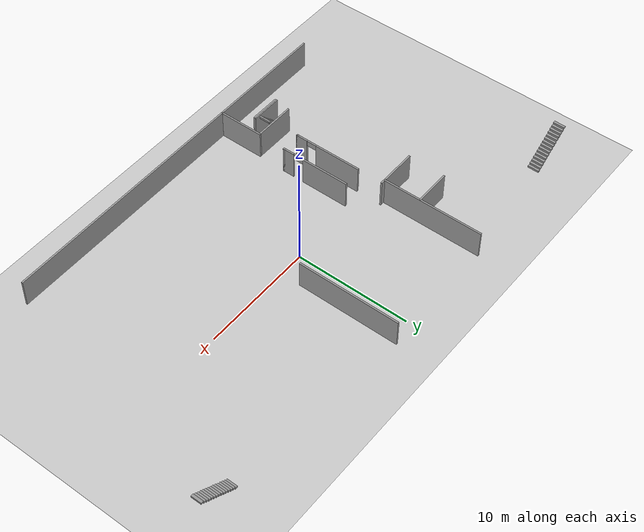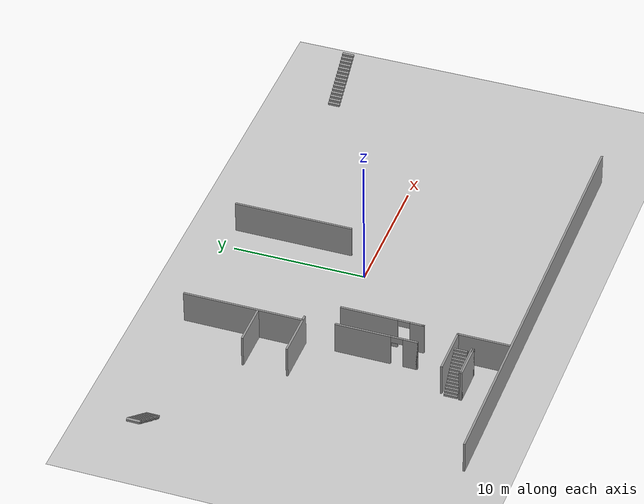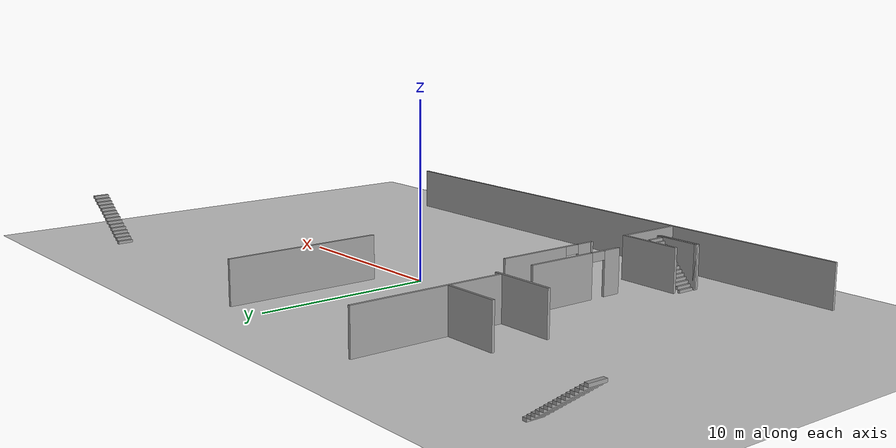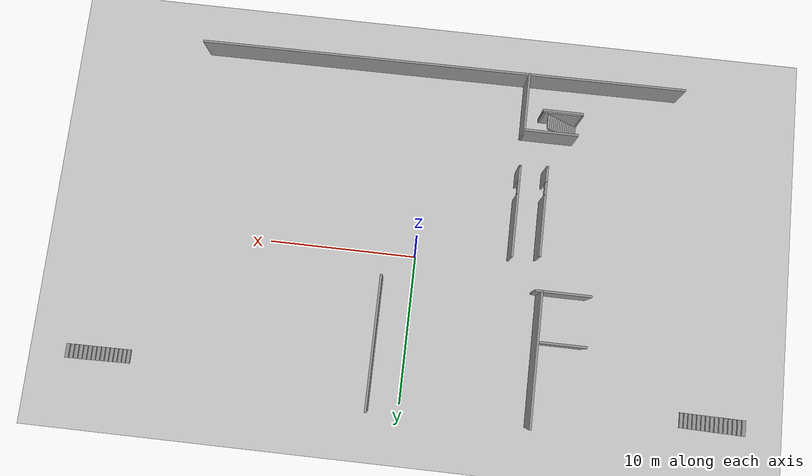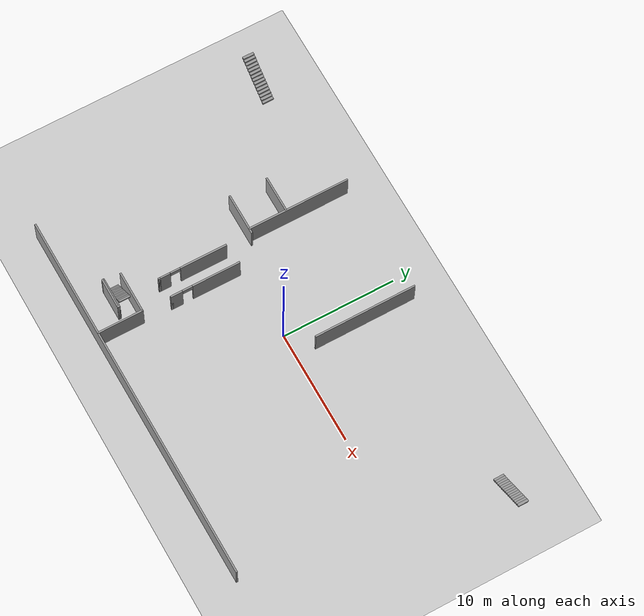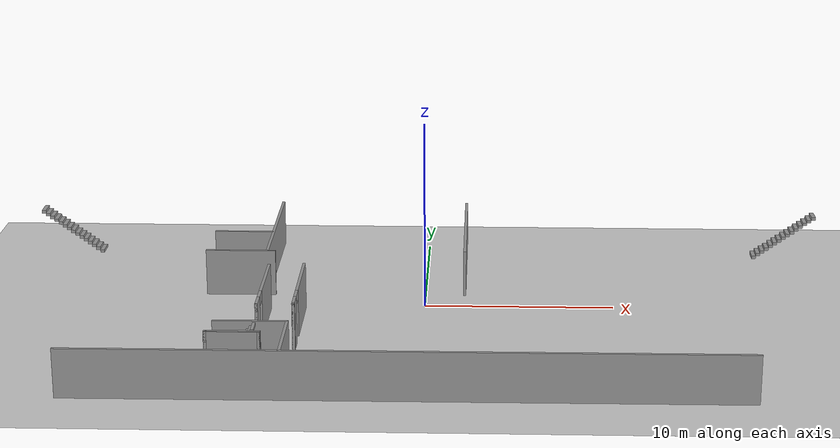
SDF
<sdf version="1.6">
 <world name="default">
  <model name="ground_plane">
   <static>1</static>
   <link name="link">
    <collision name="collision">
     <geometry><plane><normal>0 0 1</normal><size>100 100</size></plane></geometry>
     <surface><friction><ode><mu>100</mu><mu2>50</mu2></ode></friction></surface>
    </collision>
    <visual name="visual">
     <cast_shadows>0</cast_shadows>
     <geometry><plane><normal>0 0 1</normal><size>100 100</size></plane></geometry>
     <material>
      <script><uri>file://media/materials/scripts/gazebo.material</uri><name>Gazebo/Grey</name></script>
     </material>
    </visual>
   </link>
  </model>
  <model name="Devon1_test">
   <pose>0.002437 -1.27806 0 0 -0 0</pose>
   <link name="Stairs_5">
    <visual name="Stairs_5_Visual_0">
     <pose>-10.1985 -8.6433 0.083333 0 -0 1.5708</pose>
     <geometry><box><size>1 0.155676 0.166667</size></box></geometry>
     <material>
      <script><uri>file://media/materials/scripts/gazebo.material</uri><name>Gazebo/Grey</name></script>
      <ambient>1 1 1 1</ambient>
     </material>
    </visual>
    <collision name="Stairs_5_Collision_0">
     <geometry><box><size>1 0.155676 0.166667</size></box></geometry>
     <pose>-10.1985 -8.6433 0.083333 0 -0 1.5708</pose>
    </collision>
    <visual name="Stairs_5_Visual_1">
     <pose>-10.0429 -8.6433 0.25 0 -0 1.5708</pose>
     <geometry><box><size>1 0.155676 0.166667</size></box></geometry>
     <material>
      <script><uri>file://media/materials/scripts/gazebo.material</uri><name>Gazebo/Grey</name></script>
      <ambient>1 1 1 1</ambient>
     </material>
    </visual>
    <collision name="Stairs_5_Collision_1">
     <geometry><box><size>1 0.155676 0.166667</size></box></geometry>
     <pose>-10.0429 -8.6433 0.25 0 -0 1.5708</pose>
    </collision>
    <visual name="Stairs_5_Visual_2">
     <pose>-9.88718 -8.6433 0.416667 0 -0 1.5708</pose>
     <geometry><box><size>1 0.155676 0.166667</size></box></geometry>
     <material>
      <script><uri>file://media/materials/scripts/gazebo.material</uri><name>Gazebo/Grey</name></script>
      <ambient>1 1 1 1</ambient>
     </material>
    </visual>
    <collision name="Stairs_5_Collision_2">
     <geometry><box><size>1 0.155676 0.166667</size></box></geometry>
     <pose>-9.88718 -8.6433 0.416667 0 -0 1.5708</pose>
    </collision>
    <visual name="Stairs_5_Visual_3">
     <pose>-9.7315 -8.6433 0.583333 0 -0 1.5708</pose>
     <geometry><box><size>1 0.155676 0.166667</size></box></geometry>
     <material>
      <script><uri>file://media/materials/scripts/gazebo.material</uri><name>Gazebo/Grey</name></script>
      <ambient>1 1 1 1</ambient>
     </material>
    </visual>
    <collision name="Stairs_5_Collision_3">
     <geometry><box><size>1 0.155676 0.166667</size></box></geometry>
     <pose>-9.7315 -8.6433 0.583333 0 -0 1.5708</pose>
    </collision>
    <visual name="Stairs_5_Visual_4">
     <pose>-9.57583 -8.6433 0.75 0 -0 1.5708</pose>
     <geometry><box><size>1 0.155676 0.166667</size></box></geometry>
     <material>
      <script><uri>file://media/materials/scripts/gazebo.material</uri><name>Gazebo/Grey</name></script>
      <ambient>1 1 1 1</ambient>
     </material>
    </visual>
    <collision name="Stairs_5_Collision_4">
     <geometry><box><size>1 0.155676 0.166667</size></box></geometry>
     <pose>-9.57583 -8.6433 0.75 0 -0 1.5708</pose>
    </collision>
    <visual name="Stairs_5_Visual_5">
     <pose>-9.42015 -8.6433 0.916667 0 -0 1.5708</pose>
     <geometry><box><size>1 0.155676 0.166667</size></box></geometry>
     <material>
      <script><uri>file://media/materials/scripts/gazebo.material</uri><name>Gazebo/Grey</name></script>
      <ambient>1 1 1 1</ambient>
     </material>
    </visual>
    <collision name="Stairs_5_Collision_5">
     <geometry><box><size>1 0.155676 0.166667</size></box></geometry>
     <pose>-9.42015 -8.6433 0.916667 0 -0 1.5708</pose>
    </collision>
    <visual name="Stairs_5_Visual_6">
     <pose>-9.26447 -8.6433 1.08333 0 -0 1.5708</pose>
     <geometry><box><size>1 0.155676 0.166667</size></box></geometry>
     <material>
      <script><uri>file://media/materials/scripts/gazebo.material</uri><name>Gazebo/Grey</name></script>
      <ambient>1 1 1 1</ambient>
     </material>
    </visual>
    <collision name="Stairs_5_Collision_6">
     <geometry><box><size>1 0.155676 0.166667</size></box></geometry>
     <pose>-9.26447 -8.6433 1.08333 0 -0 1.5708</pose>
    </collision>
    <visual name="Stairs_5_Visual_7">
     <pose>-9.1088 -8.6433 1.25 0 -0 1.5708</pose>
     <geometry><box><size>1 0.155676 0.166667</size></box></geometry>
     <material>
      <script><uri>file://media/materials/scripts/gazebo.material</uri><name>Gazebo/Grey</name></script>
      <ambient>1 1 1 1</ambient>
     </material>
    </visual>
    <collision name="Stairs_5_Collision_7">
     <geometry><box><size>1 0.155676 0.166667</size></box></geometry>
     <pose>-9.1088 -8.6433 1.25 0 -0 1.5708</pose>
    </collision>
    <visual name="Stairs_5_Visual_8">
     <pose>-8.95312 -8.6433 1.41667 0 -0 1.5708</pose>
     <geometry><box><size>1 0.155676 0.166667</size></box></geometry>
     <material>
      <script><uri>file://media/materials/scripts/gazebo.material</uri><name>Gazebo/Grey</name></script>
      <ambient>1 1 1 1</ambient>
     </material>
    </visual>
    <collision name="Stairs_5_Collision_8">
     <geometry><box><size>1 0.155676 0.166667</size></box></geometry>
     <pose>-8.95312 -8.6433 1.41667 0 -0 1.5708</pose>
    </collision>
    <visual name="Stairs_5_Visual_9">
     <pose>-8.79744 -8.6433 1.58333 0 -0 1.5708</pose>
     <geometry><box><size>1 0.155676 0.166667</size></box></geometry>
     <material>
      <script><uri>file://media/materials/scripts/gazebo.material</uri><name>Gazebo/Grey</name></script>
      <ambient>1 1 1 1</ambient>
     </material>
    </visual>
    <collision name="Stairs_5_Collision_9">
     <geometry><box><size>1 0.155676 0.166667</size></box></geometry>
     <pose>-8.79744 -8.6433 1.58333 0 -0 1.5708</pose>
    </collision>
    <visual name="Stairs_5_Visual_10">
     <pose>-8.64177 -8.6433 1.75 0 -0 1.5708</pose>
     <geometry><box><size>1 0.155676 0.166667</size></box></geometry>
     <material>
      <script><uri>file://media/materials/scripts/gazebo.material</uri><name>Gazebo/Grey</name></script>
      <ambient>1 1 1 1</ambient>
     </material>
    </visual>
    <collision name="Stairs_5_Collision_10">
     <geometry><box><size>1 0.155676 0.166667</size></box></geometry>
     <pose>-8.64177 -8.6433 1.75 0 -0 1.5708</pose>
    </collision>
    <visual name="Stairs_5_Visual_11">
     <pose>-8.48609 -8.6433 1.91667 0 -0 1.5708</pose>
     <geometry><box><size>1 0.155676 0.166667</size></box></geometry>
     <material>
      <script><uri>file://media/materials/scripts/gazebo.material</uri><name>Gazebo/Grey</name></script>
      <ambient>1 1 1 1</ambient>
     </material>
    </visual>
    <collision name="Stairs_5_Collision_11">
     <geometry><box><size>1 0.155676 0.166667</size></box></geometry>
     <pose>-8.48609 -8.6433 1.91667 0 -0 1.5708</pose>
    </collision>
    <visual name="Stairs_5_Visual_12">
     <pose>-8.33042 -8.6433 2.08333 0 -0 1.5708</pose>
     <geometry><box><size>1 0.155676 0.166667</size></box></geometry>
     <material>
      <script><uri>file://media/materials/scripts/gazebo.material</uri><name>Gazebo/Grey</name></script>
      <ambient>1 1 1 1</ambient>
     </material>
    </visual>
    <collision name="Stairs_5_Collision_12">
     <geometry><box><size>1 0.155676 0.166667</size></box></geometry>
     <pose>-8.33042 -8.6433 2.08333 0 -0 1.5708</pose>
    </collision>
    <visual name="Stairs_5_Visual_13">
     <pose>-8.17474 -8.6433 2.25 0 -0 1.5708</pose>
     <geometry><box><size>1 0.155676 0.166667</size></box></geometry>
     <material>
      <script><uri>file://media/materials/scripts/gazebo.material</uri><name>Gazebo/Grey</name></script>
      <ambient>1 1 1 1</ambient>
     </material>
    </visual>
    <collision name="Stairs_5_Collision_13">
     <geometry><box><size>1 0.155676 0.166667</size></box></geometry>
     <pose>-8.17474 -8.6433 2.25 0 -0 1.5708</pose>
    </collision>
    <visual name="Stairs_5_Visual_14">
     <pose>-8.01906 -8.6433 2.41667 0 -0 1.5708</pose>
     <geometry><box><size>1 0.155676 0.166667</size></box></geometry>
     <material>
      <script><uri>file://media/materials/scripts/gazebo.material</uri><name>Gazebo/Grey</name></script>
      <ambient>1 1 1 1</ambient>
     </material>
    </visual>
    <collision name="Stairs_5_Collision_14">
     <geometry><box><size>1 0.155676 0.166667</size></box></geometry>
     <pose>-8.01906 -8.6433 2.41667 0 -0 1.5708</pose>
    </collision>
   </link>
   <link name="Stairs_6">
    <visual name="Stairs_6_Visual_0">
     <pose>-18.9091 10.232 0.083333 0 -0 -1.5708</pose>
     <geometry><box><size>1 0.233333 0.166667</size></box></geometry>
     <material>
      <script><uri>file://media/materials/scripts/gazebo.material</uri><name>Gazebo/Grey</name></script>
      <ambient>1 1 1 1</ambient>
     </material>
    </visual>
    <collision name="Stairs_6_Collision_0">
     <geometry><box><size>1 0.233333 0.166667</size></box></geometry>
     <pose>-18.9091 10.232 0.083333 0 -0 -1.5708</pose>
    </collision>
    <visual name="Stairs_6_Visual_1">
     <pose>-19.1424 10.232 0.25 0 -0 -1.5708</pose>
     <geometry><box><size>1 0.233333 0.166667</size></box></geometry>
     <material>
      <script><uri>file://media/materials/scripts/gazebo.material</uri><name>Gazebo/Grey</name></script>
      <ambient>1 1 1 1</ambient>
     </material>
    </visual>
    <collision name="Stairs_6_Collision_1">
     <geometry><box><size>1 0.233333 0.166667</size></box></geometry>
     <pose>-19.1424 10.232 0.25 0 -0 -1.5708</pose>
    </collision>
    <visual name="Stairs_6_Visual_2">
     <pose>-19.3758 10.232 0.416667 0 -0 -1.5708</pose>
     <geometry><box><size>1 0.233333 0.166667</size></box></geometry>
     <material>
      <script><uri>file://media/materials/scripts/gazebo.material</uri><name>Gazebo/Grey</name></script>
      <ambient>1 1 1 1</ambient>
     </material>
    </visual>
    <collision name="Stairs_6_Collision_2">
     <geometry><box><size>1 0.233333 0.166667</size></box></geometry>
     <pose>-19.3758 10.232 0.416667 0 -0 -1.5708</pose>
    </collision>
    <visual name="Stairs_6_Visual_3">
     <pose>-19.6091 10.232 0.583333 0 -0 -1.5708</pose>
     <geometry><box><size>1 0.233333 0.166667</size></box></geometry>
     <material>
      <script><uri>file://media/materials/scripts/gazebo.material</uri><name>Gazebo/Grey</name></script>
      <ambient>1 1 1 1</ambient>
     </material>
    </visual>
    <collision name="Stairs_6_Collision_3">
     <geometry><box><size>1 0.233333 0.166667</size></box></geometry>
     <pose>-19.6091 10.232 0.583333 0 -0 -1.5708</pose>
    </collision>
    <visual name="Stairs_6_Visual_4">
     <pose>-19.8424 10.232 0.75 0 -0 -1.5708</pose>
     <geometry><box><size>1 0.233333 0.166667</size></box></geometry>
     <material>
      <script><uri>file://media/materials/scripts/gazebo.material</uri><name>Gazebo/Grey</name></script>
      <ambient>1 1 1 1</ambient>
     </material>
    </visual>
    <collision name="Stairs_6_Collision_4">
     <geometry><box><size>1 0.233333 0.166667</size></box></geometry>
     <pose>-19.8424 10.232 0.75 0 -0 -1.5708</pose>
    </collision>
    <visual name="Stairs_6_Visual_5">
     <pose>-20.0757 10.232 0.916667 0 -0 -1.5708</pose>
     <geometry><box><size>1 0.233333 0.166667</size></box></geometry>
     <material>
      <script><uri>file://media/materials/scripts/gazebo.material</uri><name>Gazebo/Grey</name></script>
      <ambient>1 1 1 1</ambient>
     </material>
    </visual>
    <collision name="Stairs_6_Collision_5">
     <geometry><box><size>1 0.233333 0.166667</size></box></geometry>
     <pose>-20.0757 10.232 0.916667 0 -0 -1.5708</pose>
    </collision>
    <visual name="Stairs_6_Visual_6">
     <pose>-20.3091 10.232 1.08333 0 -0 -1.5708</pose>
     <geometry><box><size>1 0.233333 0.166667</size></box></geometry>
     <material>
      <script><uri>file://media/materials/scripts/gazebo.material</uri><name>Gazebo/Grey</name></script>
      <ambient>1 1 1 1</ambient>
     </material>
    </visual>
    <collision name="Stairs_6_Collision_6">
     <geometry><box><size>1 0.233333 0.166667</size></box></geometry>
     <pose>-20.3091 10.232 1.08333 0 -0 -1.5708</pose>
    </collision>
    <visual name="Stairs_6_Visual_7">
     <pose>-20.5424 10.232 1.25 0 -0 -1.5708</pose>
     <geometry><box><size>1 0.233333 0.166667</size></box></geometry>
     <material>
      <script><uri>file://media/materials/scripts/gazebo.material</uri><name>Gazebo/Grey</name></script>
      <ambient>1 1 1 1</ambient>
     </material>
    </visual>
    <collision name="Stairs_6_Collision_7">
     <geometry><box><size>1 0.233333 0.166667</size></box></geometry>
     <pose>-20.5424 10.232 1.25 0 -0 -1.5708</pose>
    </collision>
    <visual name="Stairs_6_Visual_8">
     <pose>-20.7757 10.232 1.41667 0 -0 -1.5708</pose>
     <geometry><box><size>1 0.233333 0.166667</size></box></geometry>
     <material>
      <script><uri>file://media/materials/scripts/gazebo.material</uri><name>Gazebo/Grey</name></script>
      <ambient>1 1 1 1</ambient>
     </material>
    </visual>
    <collision name="Stairs_6_Collision_8">
     <geometry><box><size>1 0.233333 0.166667</size></box></geometry>
     <pose>-20.7757 10.232 1.41667 0 -0 -1.5708</pose>
    </collision>
    <visual name="Stairs_6_Visual_9">
     <pose>-21.0091 10.232 1.58333 0 -0 -1.5708</pose>
     <geometry><box><size>1 0.233333 0.166667</size></box></geometry>
     <material>
      <script><uri>file://media/materials/scripts/gazebo.material</uri><name>Gazebo/Grey</name></script>
      <ambient>1 1 1 1</ambient>
     </material>
    </visual>
    <collision name="Stairs_6_Collision_9">
     <geometry><box><size>1 0.233333 0.166667</size></box></geometry>
     <pose>-21.0091 10.232 1.58333 0 -0 -1.5708</pose>
    </collision>
    <visual name="Stairs_6_Visual_10">
     <pose>-21.2424 10.232 1.75 0 -0 -1.5708</pose>
     <geometry><box><size>1 0.233333 0.166667</size></box></geometry>
     <material>
      <script><uri>file://media/materials/scripts/gazebo.material</uri><name>Gazebo/Grey</name></script>
      <ambient>1 1 1 1</ambient>
     </material>
    </visual>
    <collision name="Stairs_6_Collision_10">
     <geometry><box><size>1 0.233333 0.166667</size></box></geometry>
     <pose>-21.2424 10.232 1.75 0 -0 -1.5708</pose>
    </collision>
    <visual name="Stairs_6_Visual_11">
     <pose>-21.4758 10.232 1.91667 0 -0 -1.5708</pose>
     <geometry><box><size>1 0.233333 0.166667</size></box></geometry>
     <material>
      <script><uri>file://media/materials/scripts/gazebo.material</uri><name>Gazebo/Grey</name></script>
      <ambient>1 1 1 1</ambient>
     </material>
    </visual>
    <collision name="Stairs_6_Collision_11">
     <geometry><box><size>1 0.233333 0.166667</size></box></geometry>
     <pose>-21.4758 10.232 1.91667 0 -0 -1.5708</pose>
    </collision>
    <visual name="Stairs_6_Visual_12">
     <pose>-21.7091 10.232 2.08333 0 -0 -1.5708</pose>
     <geometry><box><size>1 0.233333 0.166667</size></box></geometry>
     <material>
      <script><uri>file://media/materials/scripts/gazebo.material</uri><name>Gazebo/Grey</name></script>
      <ambient>1 1 1 1</ambient>
     </material>
    </visual>
    <collision name="Stairs_6_Collision_12">
     <geometry><box><size>1 0.233333 0.166667</size></box></geometry>
     <pose>-21.7091 10.232 2.08333 0 -0 -1.5708</pose>
    </collision>
    <visual name="Stairs_6_Visual_13">
     <pose>-21.9424 10.232 2.25 0 -0 -1.5708</pose>
     <geometry><box><size>1 0.233333 0.166667</size></box></geometry>
     <material>
      <script><uri>file://media/materials/scripts/gazebo.material</uri><name>Gazebo/Grey</name></script>
      <ambient>1 1 1 1</ambient>
     </material>
    </visual>
    <collision name="Stairs_6_Collision_13">
     <geometry><box><size>1 0.233333 0.166667</size></box></geometry>
     <pose>-21.9424 10.232 2.25 0 -0 -1.5708</pose>
    </collision>
    <visual name="Stairs_6_Visual_14">
     <pose>-22.1757 10.232 2.41667 0 -0 -1.5708</pose>
     <geometry><box><size>1 0.233333 0.166667</size></box></geometry>
     <material>
      <script><uri>file://media/materials/scripts/gazebo.material</uri><name>Gazebo/Grey</name></script>
      <ambient>1 1 1 1</ambient>
     </material>
    </visual>
    <collision name="Stairs_6_Collision_14">
     <geometry><box><size>1 0.233333 0.166667</size></box></geometry>
     <pose>-22.1757 10.232 2.41667 0 -0 -1.5708</pose>
    </collision>
   </link>
   <link name="Stairs_8">
    <visual name="Stairs_8_Visual_0">
     <pose>18.5359 10.1599 0.083333 0 -0 1.5708</pose>
     <geometry><box><size>0.910609 0.233333 0.166667</size></box></geometry>
     <material>
      <script><uri>file://media/materials/scripts/gazebo.material</uri><name>Gazebo/Grey</name></script>
      <ambient>1 1 1 1</ambient>
     </material>
    </visual>
    <collision name="Stairs_8_Collision_0">
     <geometry><box><size>0.910609 0.233333 0.166667</size></box></geometry>
     <pose>18.5359 10.1599 0.083333 0 -0 1.5708</pose>
    </collision>
    <visual name="Stairs_8_Visual_1">
     <pose>18.7693 10.1599 0.25 0 -0 1.5708</pose>
     <geometry><box><size>0.910609 0.233333 0.166667</size></box></geometry>
     <material>
      <script><uri>file://media/materials/scripts/gazebo.material</uri><name>Gazebo/Grey</name></script>
      <ambient>1 1 1 1</ambient>
     </material>
    </visual>
    <collision name="Stairs_8_Collision_1">
     <geometry><box><size>0.910609 0.233333 0.166667</size></box></geometry>
     <pose>18.7693 10.1599 0.25 0 -0 1.5708</pose>
    </collision>
    <visual name="Stairs_8_Visual_2">
     <pose>19.0026 10.1599 0.416667 0 -0 1.5708</pose>
     <geometry><box><size>0.910609 0.233333 0.166667</size></box></geometry>
     <material>
      <script><uri>file://media/materials/scripts/gazebo.material</uri><name>Gazebo/Grey</name></script>
      <ambient>1 1 1 1</ambient>
     </material>
    </visual>
    <collision name="Stairs_8_Collision_2">
     <geometry><box><size>0.910609 0.233333 0.166667</size></box></geometry>
     <pose>19.0026 10.1599 0.416667 0 -0 1.5708</pose>
    </collision>
    <visual name="Stairs_8_Visual_3">
     <pose>19.2359 10.1599 0.583333 0 -0 1.5708</pose>
     <geometry><box><size>0.910609 0.233333 0.166667</size></box></geometry>
     <material>
      <script><uri>file://media/materials/scripts/gazebo.material</uri><name>Gazebo/Grey</name></script>
      <ambient>1 1 1 1</ambient>
     </material>
    </visual>
    <collision name="Stairs_8_Collision_3">
     <geometry><box><size>0.910609 0.233333 0.166667</size></box></geometry>
     <pose>19.2359 10.1599 0.583333 0 -0 1.5708</pose>
    </collision>
    <visual name="Stairs_8_Visual_4">
     <pose>19.4693 10.1599 0.75 0 -0 1.5708</pose>
     <geometry><box><size>0.910609 0.233333 0.166667</size></box></geometry>
     <material>
      <script><uri>file://media/materials/scripts/gazebo.material</uri><name>Gazebo/Grey</name></script>
      <ambient>1 1 1 1</ambient>
     </material>
    </visual>
    <collision name="Stairs_8_Collision_4">
     <geometry><box><size>0.910609 0.233333 0.166667</size></box></geometry>
     <pose>19.4693 10.1599 0.75 0 -0 1.5708</pose>
    </collision>
    <visual name="Stairs_8_Visual_5">
     <pose>19.7026 10.1599 0.916667 0 -0 1.5708</pose>
     <geometry><box><size>0.910609 0.233333 0.166667</size></box></geometry>
     <material>
      <script><uri>file://media/materials/scripts/gazebo.material</uri><name>Gazebo/Grey</name></script>
      <ambient>1 1 1 1</ambient>
     </material>
    </visual>
    <collision name="Stairs_8_Collision_5">
     <geometry><box><size>0.910609 0.233333 0.166667</size></box></geometry>
     <pose>19.7026 10.1599 0.916667 0 -0 1.5708</pose>
    </collision>
    <visual name="Stairs_8_Visual_6">
     <pose>19.9359 10.1599 1.08333 0 -0 1.5708</pose>
     <geometry><box><size>0.910609 0.233333 0.166667</size></box></geometry>
     <material>
      <script><uri>file://media/materials/scripts/gazebo.material</uri><name>Gazebo/Grey</name></script>
      <ambient>1 1 1 1</ambient>
     </material>
    </visual>
    <collision name="Stairs_8_Collision_6">
     <geometry><box><size>0.910609 0.233333 0.166667</size></box></geometry>
     <pose>19.9359 10.1599 1.08333 0 -0 1.5708</pose>
    </collision>
    <visual name="Stairs_8_Visual_7">
     <pose>20.1693 10.1599 1.25 0 -0 1.5708</pose>
     <geometry><box><size>0.910609 0.233333 0.166667</size></box></geometry>
     <material>
      <script><uri>file://media/materials/scripts/gazebo.material</uri><name>Gazebo/Grey</name></script>
      <ambient>1 1 1 1</ambient>
     </material>
    </visual>
    <collision name="Stairs_8_Collision_7">
     <geometry><box><size>0.910609 0.233333 0.166667</size></box></geometry>
     <pose>20.1693 10.1599 1.25 0 -0 1.5708</pose>
    </collision>
    <visual name="Stairs_8_Visual_8">
     <pose>20.4026 10.1599 1.41667 0 -0 1.5708</pose>
     <geometry><box><size>0.910609 0.233333 0.166667</size></box></geometry>
     <material>
      <script><uri>file://media/materials/scripts/gazebo.material</uri><name>Gazebo/Grey</name></script>
      <ambient>1 1 1 1</ambient>
     </material>
    </visual>
    <collision name="Stairs_8_Collision_8">
     <geometry><box><size>0.910609 0.233333 0.166667</size></box></geometry>
     <pose>20.4026 10.1599 1.41667 0 -0 1.5708</pose>
    </collision>
    <visual name="Stairs_8_Visual_9">
     <pose>20.6359 10.1599 1.58333 0 -0 1.5708</pose>
     <geometry><box><size>0.910609 0.233333 0.166667</size></box></geometry>
     <material>
      <script><uri>file://media/materials/scripts/gazebo.material</uri><name>Gazebo/Grey</name></script>
      <ambient>1 1 1 1</ambient>
     </material>
    </visual>
    <collision name="Stairs_8_Collision_9">
     <geometry><box><size>0.910609 0.233333 0.166667</size></box></geometry>
     <pose>20.6359 10.1599 1.58333 0 -0 1.5708</pose>
    </collision>
    <visual name="Stairs_8_Visual_10">
     <pose>20.8693 10.1599 1.75 0 -0 1.5708</pose>
     <geometry><box><size>0.910609 0.233333 0.166667</size></box></geometry>
     <material>
      <script><uri>file://media/materials/scripts/gazebo.material</uri><name>Gazebo/Grey</name></script>
      <ambient>1 1 1 1</ambient>
     </material>
    </visual>
    <collision name="Stairs_8_Collision_10">
     <geometry><box><size>0.910609 0.233333 0.166667</size></box></geometry>
     <pose>20.8693 10.1599 1.75 0 -0 1.5708</pose>
    </collision>
    <visual name="Stairs_8_Visual_11">
     <pose>21.1026 10.1599 1.91667 0 -0 1.5708</pose>
     <geometry><box><size>0.910609 0.233333 0.166667</size></box></geometry>
     <material>
      <script><uri>file://media/materials/scripts/gazebo.material</uri><name>Gazebo/Grey</name></script>
      <ambient>1 1 1 1</ambient>
     </material>
    </visual>
    <collision name="Stairs_8_Collision_11">
     <geometry><box><size>0.910609 0.233333 0.166667</size></box></geometry>
     <pose>21.1026 10.1599 1.91667 0 -0 1.5708</pose>
    </collision>
    <visual name="Stairs_8_Visual_12">
     <pose>21.3359 10.1599 2.08333 0 -0 1.5708</pose>
     <geometry><box><size>0.910609 0.233333 0.166667</size></box></geometry>
     <material>
      <script><uri>file://media/materials/scripts/gazebo.material</uri><name>Gazebo/Grey</name></script>
      <ambient>1 1 1 1</ambient>
     </material>
    </visual>
    <collision name="Stairs_8_Collision_12">
     <geometry><box><size>0.910609 0.233333 0.166667</size></box></geometry>
     <pose>21.3359 10.1599 2.08333 0 -0 1.5708</pose>
    </collision>
    <visual name="Stairs_8_Visual_13">
     <pose>21.5693 10.1599 2.25 0 -0 1.5708</pose>
     <geometry><box><size>0.910609 0.233333 0.166667</size></box></geometry>
     <material>
      <script><uri>file://media/materials/scripts/gazebo.material</uri><name>Gazebo/Grey</name></script>
      <ambient>1 1 1 1</ambient>
     </material>
    </visual>
    <collision name="Stairs_8_Collision_13">
     <geometry><box><size>0.910609 0.233333 0.166667</size></box></geometry>
     <pose>21.5693 10.1599 2.25 0 -0 1.5708</pose>
    </collision>
    <visual name="Stairs_8_Visual_14">
     <pose>21.8026 10.1599 2.41667 0 -0 1.5708</pose>
     <geometry><box><size>0.910609 0.233333 0.166667</size></box></geometry>
     <material>
      <script><uri>file://media/materials/scripts/gazebo.material</uri><name>Gazebo/Grey</name></script>
      <ambient>1 1 1 1</ambient>
     </material>
    </visual>
    <collision name="Stairs_8_Collision_14">
     <geometry><box><size>0.910609 0.233333 0.166667</size></box></geometry>
     <pose>21.8026 10.1599 2.41667 0 -0 1.5708</pose>
    </collision>
   </link>
   <link name="Wall_110">
    <pose>-6.38448 -2.30326 0 0 0 -1.5708</pose>
    <visual name="Wall_110_Visual_0">
     <pose>-0.987121 0 1.25 0 -0 0</pose>
     <geometry><box><size>4.27576 0.15 2.5</size></box></geometry>
     <material>
      <script><uri>file://media/materials/scripts/gazebo.material</uri><name>Gazebo/Grey</name></script>
      <ambient>1 1 1 1</ambient>
     </material>
    </visual>
    <collision name="Wall_110_Collision_0">
     <geometry><box><size>4.27576 0.15 2.5</size></box></geometry>
     <pose>-0.987121 0 1.25 0 -0 0</pose>
    </collision>
    <visual name="Wall_110_Visual_1">
     <pose>2.58788 0 1.25 0 -0 0</pose>
     <geometry><box><size>1.07424 0.15 2.5</size></box></geometry>
     <material>
      <script><uri>file://media/materials/scripts/gazebo.material</uri><name>Gazebo/Grey</name></script>
      <ambient>1 1 1 1</ambient>
     </material>
    </visual>
    <collision name="Wall_110_Collision_1">
     <geometry><box><size>1.07424 0.15 2.5</size></box></geometry>
     <pose>2.58788 0 1.25 0 -0 0</pose>
    </collision>
    <visual name="Wall_110_Visual_2">
     <pose>3.03392 0 1.25 0 -0 0</pose>
     <geometry><box><size>0.182154 0.15 2.5</size></box></geometry>
     <material>
      <script><uri>file://media/materials/scripts/gazebo.material</uri><name>Gazebo/Grey</name></script>
      <ambient>1 1 1 1</ambient>
     </material>
    </visual>
    <collision name="Wall_110_Collision_2">
     <geometry><box><size>0.182154 0.15 2.5</size></box></geometry>
     <pose>3.03392 0 1.25 0 -0 0</pose>
    </collision>
    <visual name="Wall_110_Visual_3">
     <pose>1.5968 0 2.25 0 -0 0</pose>
     <geometry><box><size>0.892089 0.15 0.5</size></box></geometry>
     <material>
      <script><uri>file://media/materials/scripts/gazebo.material</uri><name>Gazebo/Grey</name></script>
      <ambient>1 1 1 1</ambient>
     </material>
    </visual>
    <collision name="Wall_110_Collision_3">
     <geometry><box><size>0.892089 0.15 0.5</size></box></geometry>
     <pose>1.5968 0 2.25 0 -0 0</pose>
    </collision>
   </link>
   <link name="Wall_120">
    <collision name="Wall_120_Collision">
     <geometry><box><size>3.75 0.15 2.5</size></box></geometry>
     <pose>0 0 1.25 0 -0 0</pose>
    </collision>
    <visual name="Wall_120_Visual">
     <pose>0 0 1.25 0 -0 0</pose>
     <geometry><box><size>3.75 0.15 2.5</size></box></geometry>
     <material>
      <script><uri>file://media/materials/scripts/gazebo.material</uri><name>Gazebo/Grey</name></script>
      <ambient>1 1 1 1</ambient>
     </material>
    </visual>
    <pose>-8.23624 -7.90628 0 0 -0 0</pose>
   </link>
   <link name="Wall_121">
    <collision name="Wall_121_Collision">
     <geometry><box><size>4 0.15 2.5</size></box></geometry>
     <pose>0 0 1.25 0 -0 0</pose>
    </collision>
    <visual name="Wall_121_Visual">
     <pose>0 0 1.25 0 -0 0</pose>
     <geometry><box><size>4 0.15 2.5</size></box></geometry>
     <material>
      <script><uri>file://media/materials/scripts/gazebo.material</uri><name>Gazebo/Grey</name></script>
      <ambient>1 1 1 1</ambient>
     </material>
    </visual>
    <pose>-6.43624 -9.83128 0 0 0 -1.5708</pose>
   </link>
   <link name="Wall_203">
    <collision name="Wall_203_Collision">
     <geometry><box><size>2.75 0.15 2.5</size></box></geometry>
     <pose>0 0 1.25 0 -0 0</pose>
    </collision>
    <visual name="Wall_203_Visual">
     <pose>0 0 1.25 0 -0 0</pose>
     <geometry><box><size>2.75 0.15 2.5</size></box></geometry>
     <material>
      <script><uri>file://media/materials/scripts/gazebo.material</uri><name>Gazebo/Grey</name></script>
      <ambient>1 1 1 1</ambient>
     </material>
    </visual>
    <pose>-8.95598 -9.32145 0 0 -0 0</pose>
   </link>
   <link name="Wall_204">
    <collision name="Wall_204_Collision">
     <geometry><box><size>0.25 0.15 2.5</size></box></geometry>
     <pose>0 0 1.25 0 -0 0</pose>
    </collision>
    <visual name="Wall_204_Visual">
     <pose>0 0 1.25 0 -0 0</pose>
     <geometry><box><size>0.25 0.15 2.5</size></box></geometry>
     <material>
      <script><uri>file://media/materials/scripts/gazebo.material</uri><name>Gazebo/Grey</name></script>
      <ambient>1 1 1 1</ambient>
     </material>
    </visual>
    <pose>-7.65598 -9.37145 0 0 0 -1.5708</pose>
   </link>
   <link name="Wall_205">
    <collision name="Wall_205_Collision">
     <geometry><box><size>2.75 0.15 2.5</size></box></geometry>
     <pose>0 0 1.25 0 -0 0</pose>
    </collision>
    <visual name="Wall_205_Visual">
     <pose>0 0 1.25 0 -0 0</pose>
     <geometry><box><size>2.75 0.15 2.5</size></box></geometry>
     <material>
      <script><uri>file://media/materials/scripts/gazebo.material</uri><name>Gazebo/Grey</name></script>
      <ambient>1 1 1 1</ambient>
     </material>
    </visual>
    <pose>-8.95598 -9.42145 0 0 -0 3.14159</pose>
   </link>
   <link name="Wall_206">
    <collision name="Wall_206_Collision">
     <geometry><box><size>0.15 0.15 2.5</size></box></geometry>
     <pose>0 0 1.25 0 -0 0</pose>
    </collision>
    <visual name="Wall_206_Visual">
     <pose>0 0 1.25 0 -0 0</pose>
     <geometry><box><size>0.15 0.15 2.5</size></box></geometry>
     <material>
      <script><uri>file://media/materials/scripts/gazebo.material</uri><name>Gazebo/Grey</name></script>
      <ambient>1 1 1 1</ambient>
     </material>
    </visual>
    <pose>-10.256 -9.42145 0 0 -0 0</pose>
   </link>
   <link name="Wall_207">
    <collision name="Wall_207_Collision">
     <geometry><box><size>0.25 0.15 2.5</size></box></geometry>
     <pose>0 0 1.25 0 -0 0</pose>
    </collision>
    <visual name="Wall_207_Visual">
     <pose>0 0 1.25 0 -0 0</pose>
     <geometry><box><size>0.25 0.15 2.5</size></box></geometry>
     <material>
      <script><uri>file://media/materials/scripts/gazebo.material</uri><name>Gazebo/Grey</name></script>
      <ambient>1 1 1 1</ambient>
     </material>
    </visual>
    <pose>-10.256 -9.37145 0 0 -0 1.5708</pose>
   </link>
   <link name="Wall_24">
    <collision name="Wall_24_Collision">
     <geometry><box><size>9 0.15 2.5</size></box></geometry>
     <pose>0 0 1.25 0 -0 0</pose>
    </collision>
    <visual name="Wall_24_Visual">
     <pose>0 0 1.25 0 -0 0</pose>
     <geometry><box><size>9 0.15 2.5</size></box></geometry>
     <material>
      <script><uri>file://media/materials/scripts/gazebo.material</uri><name>Gazebo/Grey</name></script>
      <ambient>1 1 1 1</ambient>
     </material>
    </visual>
    <pose>-8.56569 7.35639 0 0 -0 1.5708</pose>
   </link>
   <link name="Wall_27">
    <collision name="Wall_27_Collision">
     <geometry><box><size>9 0.15 2.5</size></box></geometry>
     <pose>0 0 1.25 0 -0 0</pose>
    </collision>
    <visual name="Wall_27_Visual">
     <pose>0 0 1.25 0 -0 0</pose>
     <geometry><box><size>9 0.15 2.5</size></box></geometry>
     <material>
      <script><uri>file://media/materials/scripts/gazebo.material</uri><name>Gazebo/Grey</name></script>
      <ambient>1 1 1 1</ambient>
     </material>
    </visual>
    <pose>2.0875 7.44392 0 0 0 -1.5708</pose>
   </link>
   <link name="Wall_34">
    <pose>-8.21569 -2.47146 0 0 0 -1.5708</pose>
    <visual name="Wall_34_Visual_0">
     <pose>-0.990184 0 1.25 0 -0 0</pose>
     <geometry><box><size>4.17533 0.15 2.5</size></box></geometry>
     <material>
      <script><uri>file://media/materials/scripts/gazebo.material</uri><name>Gazebo/Grey</name></script>
      <ambient>1 1 1 1</ambient>
     </material>
    </visual>
    <collision name="Wall_34_Collision_0">
     <geometry><box><size>4.17533 0.15 2.5</size></box></geometry>
     <pose>-0.990184 0 1.25 0 -0 0</pose>
    </collision>
    <visual name="Wall_34_Visual_1">
     <pose>2.53767 0 1.25 0 -0 0</pose>
     <geometry><box><size>1.08037 0.15 2.5</size></box></geometry>
     <material>
      <script><uri>file://media/materials/scripts/gazebo.material</uri><name>Gazebo/Grey</name></script>
      <ambient>1 1 1 1</ambient>
     </material>
    </visual>
    <collision name="Wall_34_Collision_1">
     <geometry><box><size>1.08037 0.15 2.5</size></box></geometry>
     <pose>2.53767 0 1.25 0 -0 0</pose>
    </collision>
    <visual name="Wall_34_Visual_2">
     <pose>2.98293 0 1.25 0 -0 0</pose>
     <geometry><box><size>0.189848 0.15 2.5</size></box></geometry>
     <material>
      <script><uri>file://media/materials/scripts/gazebo.material</uri><name>Gazebo/Grey</name></script>
      <ambient>1 1 1 1</ambient>
     </material>
    </visual>
    <collision name="Wall_34_Collision_2">
     <geometry><box><size>0.189848 0.15 2.5</size></box></geometry>
     <pose>2.98293 0 1.25 0 -0 0</pose>
    </collision>
    <visual name="Wall_34_Visual_3">
     <pose>1.54274 0 2.25 0 -0 0</pose>
     <geometry><box><size>0.890521 0.15 0.5</size></box></geometry>
     <material>
      <script><uri>file://media/materials/scripts/gazebo.material</uri><name>Gazebo/Grey</name></script>
      <ambient>1 1 1 1</ambient>
     </material>
    </visual>
    <collision name="Wall_34_Collision_3">
     <geometry><box><size>0.890521 0.15 0.5</size></box></geometry>
     <pose>1.54274 0 2.25 0 -0 0</pose>
    </collision>
   </link>
   <link name="Wall_64">
    <collision name="Wall_64_Collision">
     <geometry><box><size>3.75 0.15 2.5</size></box></geometry>
     <pose>0 0 1.25 0 -0 0</pose>
    </collision>
    <visual name="Wall_64_Visual">
     <pose>0 0 1.25 0 -0 0</pose>
     <geometry><box><size>3.75 0.15 2.5</size></box></geometry>
     <material>
      <script><uri>file://media/materials/scripts/gazebo.material</uri><name>Gazebo/Grey</name></script>
      <ambient>1 1 1 1</ambient>
     </material>
    </visual>
    <pose>-10.0019 2.87744 0 0 -0 0</pose>
   </link>
   <link name="Wall_66">
    <collision name="Wall_66_Collision">
     <geometry><box><size>3.25 0.15 2.5</size></box></geometry>
     <pose>0 0 1.25 0 -0 0</pose>
    </collision>
    <visual name="Wall_66_Visual">
     <pose>0 0 1.25 0 -0 0</pose>
     <geometry><box><size>3.25 0.15 2.5</size></box></geometry>
     <material>
      <script><uri>file://media/materials/scripts/gazebo.material</uri><name>Gazebo/Grey</name></script>
      <ambient>1 1 1 1</ambient>
     </material>
    </visual>
    <pose>-10.1835 6.22177 0 0 -0 0</pose>
   </link>
   <link name="Wall_87">
    <collision name="Wall_87_Collision">
     <geometry><box><size>33.25 0.15 2.5</size></box></geometry>
     <pose>0 0 1.25 0 -0 0</pose>
    </collision>
    <visual name="Wall_87_Visual">
     <pose>0 0 1.25 0 -0 0</pose>
     <geometry><box><size>33.25 0.15 2.5</size></box></geometry>
     <material>
      <script><uri>file://media/materials/scripts/gazebo.material</uri><name>Gazebo/Grey</name></script>
      <ambient>1 1 1 1</ambient>
     </material>
    </visual>
    <pose>-0.515693 -11.7993 0 0 -0 0.004186</pose>
   </link>
   <static>1</static>
  </model>
 </world>
</sdf>
